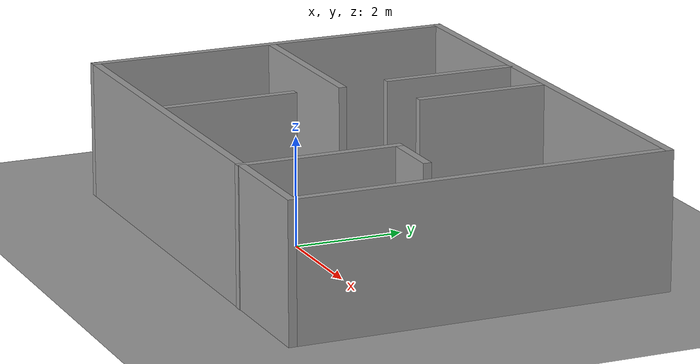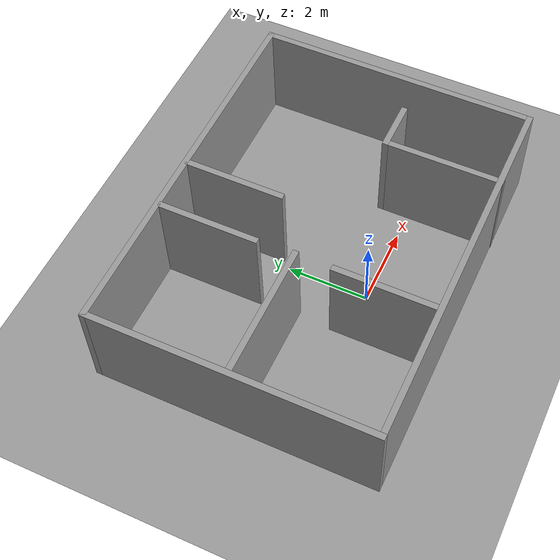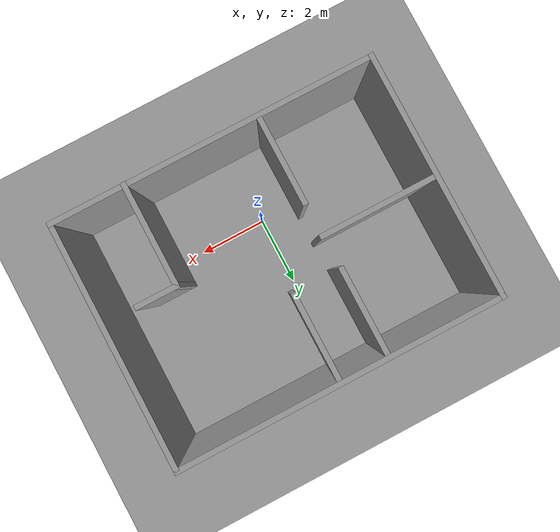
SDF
<sdf version="1.6">
 <world name="default">
  <light name="sun" type="directional">
   <pose>0 0 10 0 -0 0</pose>
   <diffuse>0.8 0.8 0.8 1</diffuse>
   <specular>0.2 0.2 0.2 1</specular>
   <attenuation>
    <range>1000</range>
    <constant>0.9</constant>
    <linear>0.01</linear>
    <quadratic>0.001</quadratic>
   </attenuation>
   <direction>0.5 0.1 -0.9</direction>
  </light>
  <scene><ambient>0.4 0.4 0.4 1</ambient><background>0.7 0.7 0.7 1</background><shadows>1</shadows></scene>
  <physics name="default_physics" default="0" type="ode">
   <max_step_size>0.01</max_step_size>
   <real_time_factor>1</real_time_factor>
   <real_time_update_rate>100</real_time_update_rate>
  </physics>
  <model name="ground_plane_0">
   <static>1</static>
   <link name="link">
    <collision name="collision">
     <geometry><plane><normal>0 0 1</normal><size>100 100</size></plane></geometry>
     <surface><friction><ode><mu>100</mu><mu2>50</mu2></ode></friction></surface>
    </collision>
    <visual name="visual">
     <cast_shadows>0</cast_shadows>
     <geometry><plane><normal>0 0 1</normal><size>100 100</size></plane></geometry>
     <material>
      <script><uri>file://media/materials/scripts/gazebo.material</uri><name>Gazebo/Grey</name></script>
     </material>
    </visual>
    <velocity_decay><linear>0</linear><angular>0</angular></velocity_decay>
   </link>
   <pose>0.497681 0 0 0 -0 0</pose>
  </model>
  <gravity>0 0 -9.8</gravity>
  <magnetic_field>6e-06 2.3e-05 -4.2e-05</magnetic_field>
  <atmosphere type="adiabatic"/>
  <spherical_coordinates>
   <surface_model>EARTH_WGS84</surface_model>
   <latitude_deg>0</latitude_deg>
   <longitude_deg>0</longitude_deg>
   <elevation>0</elevation>
   <heading_deg>0</heading_deg>
  </spherical_coordinates>
  <model name="home">
   <pose>0.23488 1.30291 0 0 -0 0</pose>
   <link name="Wall_0">
    <collision name="Wall_0_Collision">
     <geometry><box><size>7 0.15 2.5</size></box></geometry>
     <pose>0 0 1.25 0 -0 0</pose>
    </collision>
    <visual name="Wall_0_Visual">
     <pose>0 0 1.25 0 -0 0</pose>
     <geometry><box><size>7 0.15 2.5</size></box></geometry>
     <material>
      <script><uri>file://media/materials/scripts/gazebo.material</uri><name>Gazebo/Grey</name></script>
      <ambient>1 1 1 1</ambient>
     </material>
     <meta><layer>0</layer></meta>
    </visual>
    <pose>-4.55 0.006053 0 0 0 -1.5708</pose>
   </link>
   <link name="Wall_10">
    <collision name="Wall_10_Collision">
     <geometry><box><size>2.5 0.15 2.5</size></box></geometry>
     <pose>0 0 1.25 0 -0 0</pose>
    </collision>
    <visual name="Wall_10_Visual">
     <pose>0 0 1.25 0 -0 0</pose>
     <geometry><box><size>2.5 0.15 2.5</size></box></geometry>
     <material>
      <script><uri>file://media/materials/scripts/gazebo.material</uri><name>Gazebo/Grey</name></script>
      <ambient>1 1 1 1</ambient>
     </material>
     <meta><layer>0</layer></meta>
    </visual>
    <pose>-1.305 -2.10892 0 0 0 -1.5708</pose>
   </link>
   <link name="Wall_16">
    <collision name="Wall_16_Collision">
     <geometry><box><size>3 0.15 2.5</size></box></geometry>
     <pose>0 0 1.25 0 -0 0</pose>
    </collision>
    <visual name="Wall_16_Visual">
     <pose>0 0 1.25 0 -0 0</pose>
     <geometry><box><size>3 0.15 2.5</size></box></geometry>
     <material>
      <script><uri>file://media/materials/scripts/gazebo.material</uri><name>Gazebo/Grey</name></script>
      <ambient>1 1 1 1</ambient>
     </material>
     <meta><layer>0</layer></meta>
    </visual>
    <pose>2.47286 -2.00605 0 0 0 -1.5708</pose>
   </link>
   <link name="Wall_2">
    <collision name="Wall_2_Collision">
     <geometry><box><size>9.25 0.15 2.5</size></box></geometry>
     <pose>0 0 1.25 0 -0 0</pose>
    </collision>
    <visual name="Wall_2_Visual">
     <pose>0 0 1.25 0 -0 0</pose>
     <geometry><box><size>9.25 0.15 2.5</size></box></geometry>
     <material>
      <script><uri>file://media/materials/scripts/gazebo.material</uri><name>Gazebo/Grey</name></script>
      <ambient>1 1 1 1</ambient>
     </material>
     <meta><layer>0</layer></meta>
    </visual>
    <pose>0 3.43105 0 0 -0 0</pose>
   </link>
   <link name="Wall_20">
    <collision name="Wall_20_Collision">
     <geometry><box><size>1.25 0.15 2.5</size></box></geometry>
     <pose>0 0 1.25 0 -0 0</pose>
    </collision>
    <visual name="Wall_20_Visual">
     <pose>0 0 1.25 0 -0 0</pose>
     <geometry><box><size>1.25 0.15 2.5</size></box></geometry>
     <material>
      <script><uri>file://media/materials/scripts/gazebo.material</uri><name>Gazebo/Grey</name></script>
      <ambient>1 1 1 1</ambient>
     </material>
     <meta><layer>0</layer></meta>
    </visual>
    <pose>3.02286 -0.581053 0 0 -0 0</pose>
   </link>
   <link name="Wall_22">
    <collision name="Wall_22_Collision">
     <geometry><box><size>2.5 0.15 2.5</size></box></geometry>
     <pose>0 0 1.25 0 -0 0</pose>
    </collision>
    <visual name="Wall_22_Visual">
     <pose>0 0 1.25 0 -0 0</pose>
     <geometry><box><size>2.5 0.15 2.5</size></box></geometry>
     <material>
      <script><uri>file://media/materials/scripts/gazebo.material</uri><name>Gazebo/Grey</name></script>
      <ambient>1 1 1 1</ambient>
     </material>
     <meta><layer>0</layer></meta>
    </visual>
    <pose>0.006759 2.16893 0 0 0 -1.5708</pose>
   </link>
   <link name="Wall_3">
    <collision name="Wall_3_Collision">
     <geometry><box><size>7 0.15 2.5</size></box></geometry>
     <pose>0 0 1.25 0 -0 0</pose>
    </collision>
    <visual name="Wall_3_Visual">
     <pose>0 0 1.25 0 -0 0</pose>
     <geometry><box><size>7 0.15 2.5</size></box></geometry>
     <material>
      <script><uri>file://media/materials/scripts/gazebo.material</uri><name>Gazebo/Grey</name></script>
      <ambient>1 1 1 1</ambient>
     </material>
     <meta><layer>0</layer></meta>
    </visual>
    <pose>4.55 0.006053 0 0 0 -1.5708</pose>
   </link>
   <link name="Wall_4">
    <collision name="Wall_4_Collision">
     <geometry><box><size>9.25 0.15 2.5</size></box></geometry>
     <pose>0 0 1.25 0 -0 0</pose>
    </collision>
    <visual name="Wall_4_Visual">
     <pose>0 0 1.25 0 -0 0</pose>
     <geometry><box><size>9.25 0.15 2.5</size></box></geometry>
     <material>
      <script><uri>file://media/materials/scripts/gazebo.material</uri><name>Gazebo/Grey</name></script>
      <ambient>1 1 1 1</ambient>
     </material>
     <meta><layer>0</layer></meta>
    </visual>
    <pose>0 -3.41895 0 0 -0 3.14159</pose>
   </link>
   <link name="Wall_6">
    <collision name="Wall_6_Collision">
     <geometry><box><size>2.5 0.15 2.5</size></box></geometry>
     <pose>0 0 1.25 0 -0 0</pose>
    </collision>
    <visual name="Wall_6_Visual">
     <pose>0 0 1.25 0 -0 0</pose>
     <geometry><box><size>2.5 0.15 2.5</size></box></geometry>
     <material>
      <script><uri>file://media/materials/scripts/gazebo.material</uri><name>Gazebo/Grey</name></script>
      <ambient>1 1 1 1</ambient>
     </material>
     <meta><layer>0</layer></meta>
    </visual>
    <pose>-1.33998 2.15144 0 0 0 -1.5708</pose>
   </link>
   <link name="Wall_8">
    <collision name="Wall_8_Collision">
     <geometry><box><size>3.25 0.15 2.5</size></box></geometry>
     <pose>0 0 1.25 0 -0 0</pose>
    </collision>
    <visual name="Wall_8_Visual">
     <pose>0 0 1.25 0 -0 0</pose>
     <geometry><box><size>3.25 0.15 2.5</size></box></geometry>
     <material>
      <script><uri>file://media/materials/scripts/gazebo.material</uri><name>Gazebo/Grey</name></script>
      <ambient>1 1 1 1</ambient>
     </material>
     <meta><layer>0</layer></meta>
    </visual>
    <pose>-2.85074 0.020821 0 0 -0 0</pose>
   </link>
   <static>1</static>
  </model>
 </world>
</sdf>
